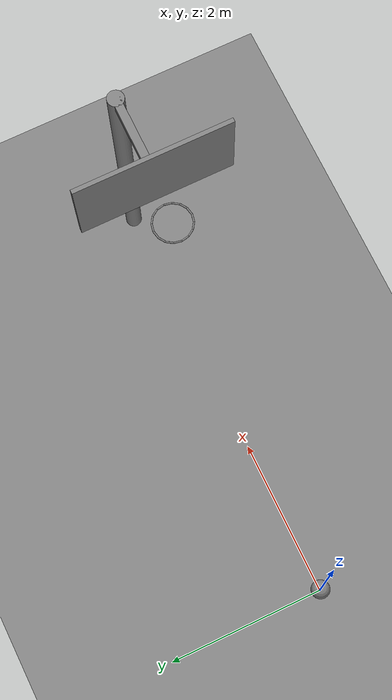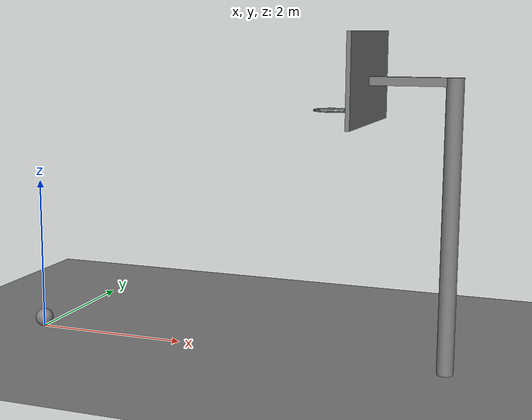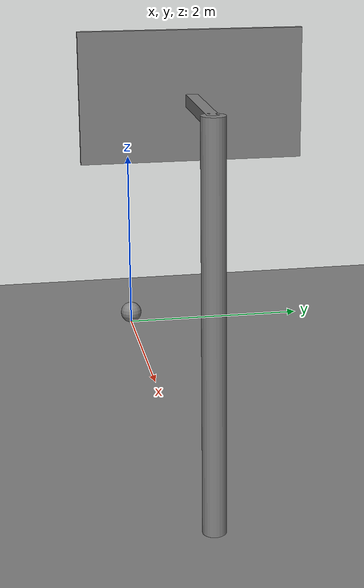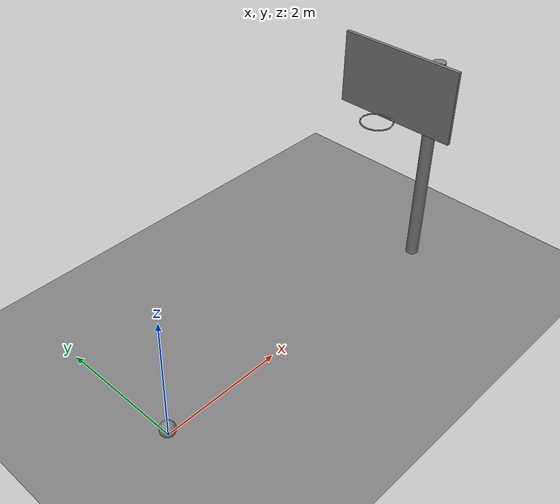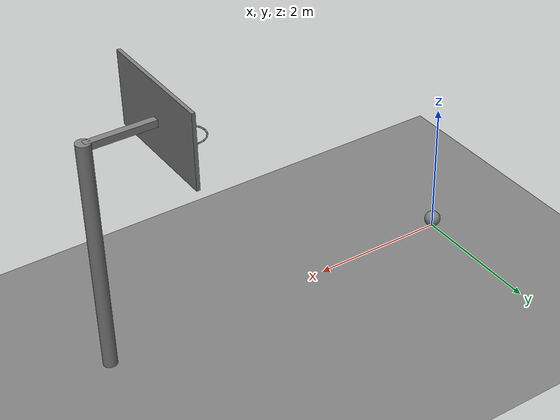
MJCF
<mujoco model="basketball_fixture">
  <option timestep="0.002"/>
  <worldbody>
    <light name="key" pos="2 0 8" dir="0 0 -1" directional="true"/>
    <geom name="floor" type="plane" size="10 10 0.1"/>

    <body name="ball" pos="0 0 0.12">
      <freejoint/>
      <geom name="ball" type="sphere" size="0.12" mass="0.62"/>
    </body>

    <!-- Origin is the rim center. The rim is 16 capsules on an 0.2286 m radius ring. -->
    <body name="hoop" pos="4 0 3.05">
      <geom name="rim00" type="capsule" size="0.01" fromto="0.2286 0 0 0.2112 0.0875 0"/>
      <geom name="rim01" type="capsule" size="0.01" fromto="0.2112 0.0875 0 0.1616 0.1616 0"/>
      <geom name="rim02" type="capsule" size="0.01" fromto="0.1616 0.1616 0 0.0875 0.2112 0"/>
      <geom name="rim03" type="capsule" size="0.01" fromto="0.0875 0.2112 0 0 0.2286 0"/>
      <geom name="rim04" type="capsule" size="0.01" fromto="0 0.2286 0 -0.0875 0.2112 0"/>
      <geom name="rim05" type="capsule" size="0.01" fromto="-0.0875 0.2112 0 -0.1616 0.1616 0"/>
      <geom name="rim06" type="capsule" size="0.01" fromto="-0.1616 0.1616 0 -0.2112 0.0875 0"/>
      <geom name="rim07" type="capsule" size="0.01" fromto="-0.2112 0.0875 0 -0.2286 0 0"/>
      <geom name="rim08" type="capsule" size="0.01" fromto="-0.2286 0 0 -0.2112 -0.0875 0"/>
      <geom name="rim09" type="capsule" size="0.01" fromto="-0.2112 -0.0875 0 -0.1616 -0.1616 0"/>
      <geom name="rim10" type="capsule" size="0.01" fromto="-0.1616 -0.1616 0 -0.0875 -0.2112 0"/>
      <geom name="rim11" type="capsule" size="0.01" fromto="-0.0875 -0.2112 0 0 -0.2286 0"/>
      <geom name="rim12" type="capsule" size="0.01" fromto="0 -0.2286 0 0.0875 -0.2112 0"/>
      <geom name="rim13" type="capsule" size="0.01" fromto="0.0875 -0.2112 0 0.1616 -0.1616 0"/>
      <geom name="rim14" type="capsule" size="0.01" fromto="0.1616 -0.1616 0 0.2112 -0.0875 0"/>
      <geom name="rim15" type="capsule" size="0.01" fromto="0.2112 -0.0875 0 0.2286 0 0"/>
      <geom name="backboard" type="box" size="0.025 0.915 0.535" pos="0.405 0 0.385"/>
    </body>

    <body name="pole">
      <geom name="pole" type="cylinder" size="0.1" fromto="5.4 0 0 5.4 0 3.45"/>
      <geom name="arm" type="box" size="0.485 0.05 0.05" pos="4.915 0 3.4"/>
    </body>
  </worldbody>
</mujoco>
